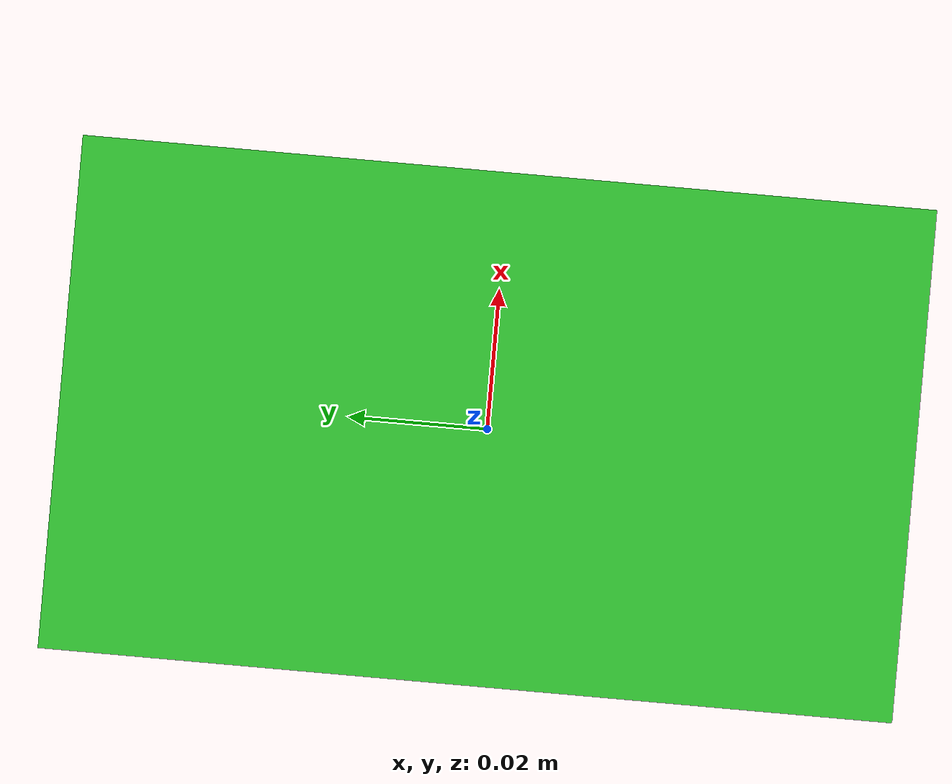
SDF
<?xml version='1.0'?>
<sdf version="1.6">
  <model name="camera_rig">

    <static>true</static>

    <link name="base_link">
      <visual name="rig_visual">
        <geometry>
          <box>
            <size>0.06 0.1 0.05</size>
          </box>
        </geometry>
        <material>
          <ambient>0.2 0.8 0.2 1</ambient>
          <diffuse>0.2 0.8 0.2 1</diffuse>
        </material>
      </visual>

      <sensor type="depth" name="camera_rig_sensor">
        <update_rate>10.0</update_rate>
        <always_on>true</always_on>
        <visualize>false</visualize>
        <camera name="camera_rig_camera">
          <horizontal_fov>1.3962634</horizontal_fov>
          <image>
            <width>640</width>
            <height>480</height>
            <format>R8G8B8</format>
          </image>
          <clip>
            <near>0.05</near>
            <far>100.0</far>
          </clip>
        </camera>
        <plugin name="camera_rig_controller_plugin" filename="libgazebo_ros_openni_kinect.so">
          <baseline>0.2</baseline>
          <alwaysOn>true</alwaysOn>
          <updateRate>10.0</updateRate>
          <!-- Distinct from the rover's own camera_link/image_raw topic
               (untouched, still fed by nothing downstream). -->
          <cameraName>camera_rig/camera</cameraName>
          <imageTopicName>image_raw</imageTopicName>
          <cameraInfoTopicName>camera_info</cameraInfoTopicName>
          <depthImageTopicName>depth/image_raw</depthImageTopicName>
          <depthImageInfoTopicName>depth/camera_info</depthImageInfoTopicName>
          <pointCloudTopicName>depth/points</pointCloudTopicName>
          <frameName>camera_rig_base_link</frameName>
          <pointCloudCutoff>0.05</pointCloudCutoff>
          <pointCloudCutoffMax>100.0</pointCloudCutoffMax>
          <distortionK1>0</distortionK1>
          <distortionK2>0</distortionK2>
          <distortionK3>0</distortionK3>
          <distortionT1>0</distortionT1>
          <distortionT2>0</distortionT2>
          <CxPrime>0</CxPrime>
          <Cx>0</Cx>
          <Cy>0</Cy>
          <focalLength>0</focalLength>
          <hackBaseline>0</hackBaseline>
        </plugin>
      </sensor>
    </link>

  </model>
</sdf>
